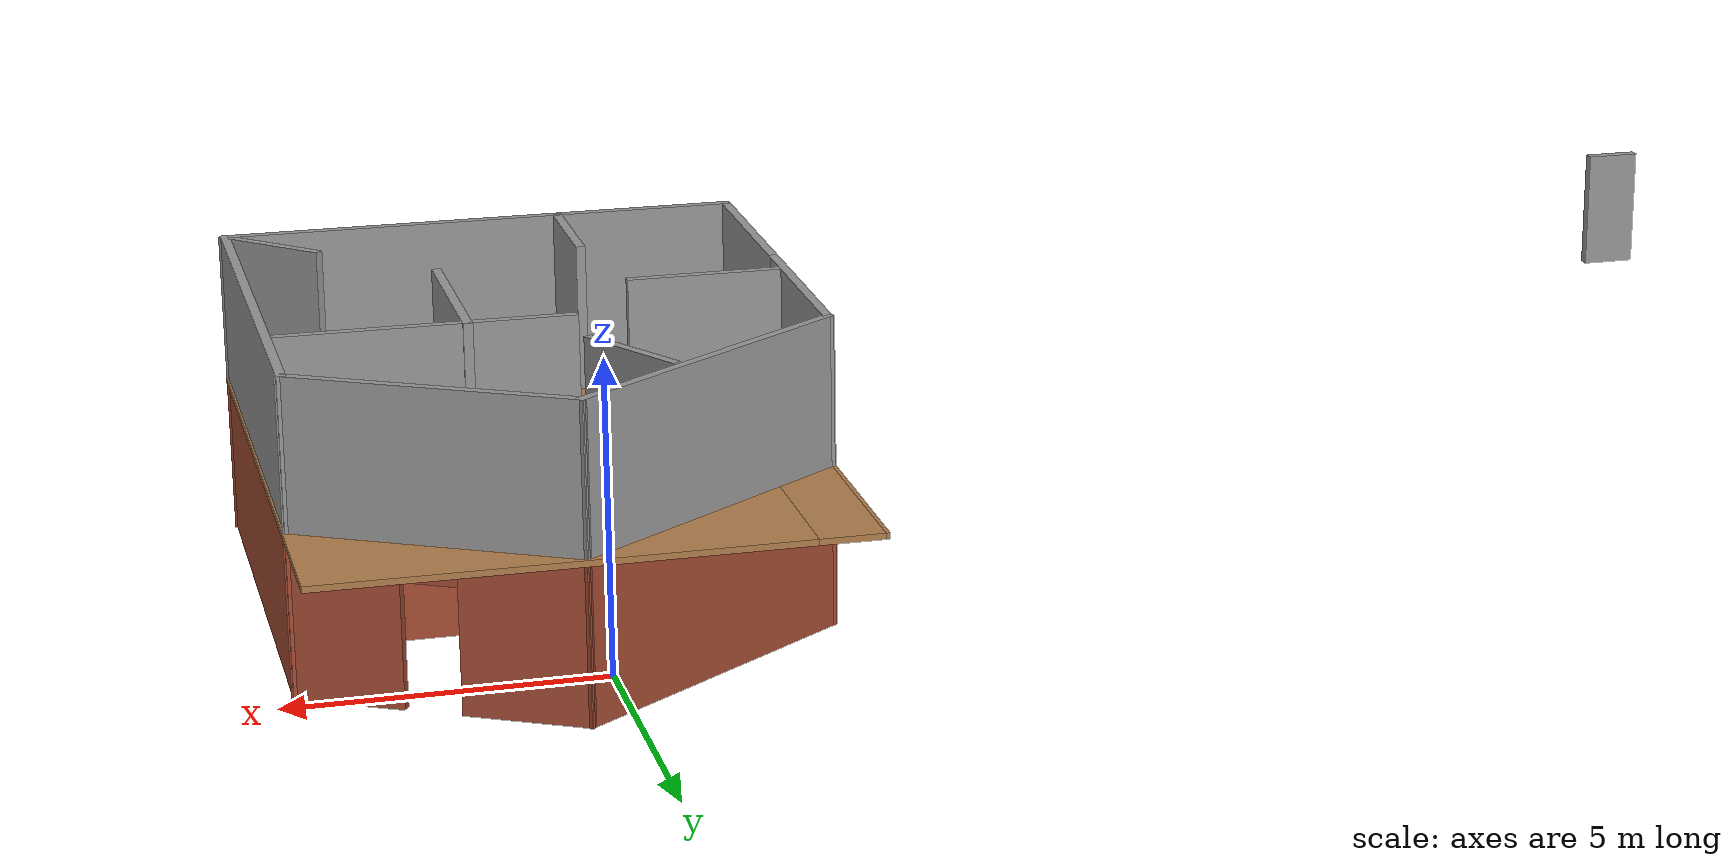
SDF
<?xml version='1.0'?>
<sdf version='1.7'>
  <model name='mapping'>
    <pose>0.485619 -3.31062 0 0 -0 0</pose>
    <link name='Door_2'>
      <collision name='Door_2_Collision'>
        <geometry>
          <box>
            <size>0.9 0.17 2</size>
          </box>
        </geometry>
        <pose>0 0 1 0 -0 0</pose>
      </collision>
      <visual name='Door_2_Visual'>
        <pose>0 0 1 0 -0 0</pose>
        <geometry>
          <box>
            <size>0.9 0.17 2</size>
          </box>
        </geometry>
        <material>
          <script>
            <uri>file://media/materials/scripts/gazebo.material</uri>
            <name>Gazebo/Grey</name>
          </script>
        </material>
      </visual>
      <pose>-20.8997 -6.18883 2.5 0 -0 0</pose>
    </link>
    <link name='Floor_0'>
      <pose>0 0 2.5 0 -0 0</pose>
      <visual name='Floor_0_Visual_0'>
        <pose>-4.24823 0 0.05 0 -0 0</pose>
        <geometry>
          <box>
            <size>0.06443 10.6109 0.1</size>
          </box>
        </geometry>
        <material>
          <script>
            <uri>file://media/materials/scripts/gazebo.material</uri>
            <name>Gazebo/Wood</name>
          </script>
          <ambient>1 1 1 1</ambient>
        </material>
        <meta>
          <layer>1</layer>
        </meta>
      </visual>
      <collision name='Floor_0_Collision_0'>
        <geometry>
          <box>
            <size>0.06443 10.6109 0.1</size>
          </box>
        </geometry>
        <pose>-4.24823 0 0.05 0 -0 0</pose>
      </collision>
      <visual name='Floor_0_Visual_1'>
        <pose>0.032215 -5.21233 0.05 0 -0 0</pose>
        <geometry>
          <box>
            <size>8.49646 0.186239 0.1</size>
          </box>
        </geometry>
        <material>
          <script>
            <uri>file://media/materials/scripts/gazebo.material</uri>
            <name>Gazebo/Wood</name>
          </script>
          <ambient>1 1 1 1</ambient>
        </material>
        <meta>
          <layer>1</layer>
        </meta>
      </visual>
      <collision name='Floor_0_Collision_1'>
        <geometry>
          <box>
            <size>8.49646 0.186239 0.1</size>
          </box>
        </geometry>
        <pose>0.032215 -5.21233 0.05 0 -0 0</pose>
      </collision>
      <visual name='Floor_0_Visual_2'>
        <pose>0.532215 0.093119 0.05 0 -0 0</pose>
        <geometry>
          <box>
            <size>7.49646 10.4247 0.1</size>
          </box>
        </geometry>
        <material>
          <script>
            <uri>file://media/materials/scripts/gazebo.material</uri>
            <name>Gazebo/Wood</name>
          </script>
          <ambient>1 1 1 1</ambient>
        </material>
        <meta>
          <layer>1</layer>
        </meta>
      </visual>
      <collision name='Floor_0_Collision_2'>
        <geometry>
          <box>
            <size>7.49646 10.4247 0.1</size>
          </box>
        </geometry>
        <pose>0.532215 0.093119 0.05 0 -0 0</pose>
      </collision>
      <visual name='Floor_0_Visual_3'>
        <pose>-3.71602 1.84312 0.05 0 -0 0</pose>
        <geometry>
          <box>
            <size>1 6.92465 0.1</size>
          </box>
        </geometry>
        <material>
          <script>
            <uri>file://media/materials/scripts/gazebo.material</uri>
            <name>Gazebo/Wood</name>
          </script>
          <ambient>1 1 1 1</ambient>
        </material>
        <meta>
          <layer>1</layer>
        </meta>
      </visual>
      <collision name='Floor_0_Collision_3'>
        <geometry>
          <box>
            <size>1 6.92465 0.1</size>
          </box>
        </geometry>
        <pose>-3.71602 1.84312 0.05 0 -0 0</pose>
      </collision>
    </link>
    <link name='Stairs_0'>
      <visual name='Stairs_0_Visual_0'>
        <pose>-3.71602 -1.73588 0.083333 0 -0 0</pose>
        <geometry>
          <box>
            <size>1 0.233333 0.166667</size>
          </box>
        </geometry>
        <material>
          <script>
            <uri>file://media/materials/scripts/gazebo.material</uri>
            <name>Gazebo/Grey</name>
          </script>
          <ambient>1 1 1 1</ambient>
        </material>
        <meta>
          <layer>0</layer>
        </meta>
      </visual>
      <collision name='Stairs_0_Collision_0'>
        <geometry>
          <box>
            <size>1 0.233333 0.166667</size>
          </box>
        </geometry>
        <pose>-3.71602 -1.73588 0.083333 0 -0 0</pose>
      </collision>
      <visual name='Stairs_0_Visual_1'>
        <pose>-3.71602 -1.96921 0.25 0 -0 0</pose>
        <geometry>
          <box>
            <size>1 0.233333 0.166667</size>
          </box>
        </geometry>
        <material>
          <script>
            <uri>file://media/materials/scripts/gazebo.material</uri>
            <name>Gazebo/Grey</name>
          </script>
          <ambient>1 1 1 1</ambient>
        </material>
        <meta>
          <layer>0</layer>
        </meta>
      </visual>
      <collision name='Stairs_0_Collision_1'>
        <geometry>
          <box>
            <size>1 0.233333 0.166667</size>
          </box>
        </geometry>
        <pose>-3.71602 -1.96921 0.25 0 -0 0</pose>
      </collision>
      <visual name='Stairs_0_Visual_2'>
        <pose>-3.71602 -2.20254 0.416667 0 -0 0</pose>
        <geometry>
          <box>
            <size>1 0.233333 0.166667</size>
          </box>
        </geometry>
        <material>
          <script>
            <uri>file://media/materials/scripts/gazebo.material</uri>
            <name>Gazebo/Grey</name>
          </script>
          <ambient>1 1 1 1</ambient>
        </material>
        <meta>
          <layer>0</layer>
        </meta>
      </visual>
      <collision name='Stairs_0_Collision_2'>
        <geometry>
          <box>
            <size>1 0.233333 0.166667</size>
          </box>
        </geometry>
        <pose>-3.71602 -2.20254 0.416667 0 -0 0</pose>
      </collision>
      <visual name='Stairs_0_Visual_3'>
        <pose>-3.71602 -2.43587 0.583333 0 -0 0</pose>
        <geometry>
          <box>
            <size>1 0.233333 0.166667</size>
          </box>
        </geometry>
        <material>
          <script>
            <uri>file://media/materials/scripts/gazebo.material</uri>
            <name>Gazebo/Grey</name>
          </script>
          <ambient>1 1 1 1</ambient>
        </material>
        <meta>
          <layer>0</layer>
        </meta>
      </visual>
      <collision name='Stairs_0_Collision_3'>
        <geometry>
          <box>
            <size>1 0.233333 0.166667</size>
          </box>
        </geometry>
        <pose>-3.71602 -2.43587 0.583333 0 -0 0</pose>
      </collision>
      <visual name='Stairs_0_Visual_4'>
        <pose>-3.71602 -2.66921 0.75 0 -0 0</pose>
        <geometry>
          <box>
            <size>1 0.233333 0.166667</size>
          </box>
        </geometry>
        <material>
          <script>
            <uri>file://media/materials/scripts/gazebo.material</uri>
            <name>Gazebo/Grey</name>
          </script>
          <ambient>1 1 1 1</ambient>
        </material>
        <meta>
          <layer>0</layer>
        </meta>
      </visual>
      <collision name='Stairs_0_Collision_4'>
        <geometry>
          <box>
            <size>1 0.233333 0.166667</size>
          </box>
        </geometry>
        <pose>-3.71602 -2.66921 0.75 0 -0 0</pose>
      </collision>
      <visual name='Stairs_0_Visual_5'>
        <pose>-3.71602 -2.90254 0.916667 0 -0 0</pose>
        <geometry>
          <box>
            <size>1 0.233333 0.166667</size>
          </box>
        </geometry>
        <material>
          <script>
            <uri>file://media/materials/scripts/gazebo.material</uri>
            <name>Gazebo/Grey</name>
          </script>
          <ambient>1 1 1 1</ambient>
        </material>
        <meta>
          <layer>0</layer>
        </meta>
      </visual>
      <collision name='Stairs_0_Collision_5'>
        <geometry>
          <box>
            <size>1 0.233333 0.166667</size>
          </box>
        </geometry>
        <pose>-3.71602 -2.90254 0.916667 0 -0 0</pose>
      </collision>
      <visual name='Stairs_0_Visual_6'>
        <pose>-3.71602 -3.13587 1.08333 0 -0 0</pose>
        <geometry>
          <box>
            <size>1 0.233333 0.166667</size>
          </box>
        </geometry>
        <material>
          <script>
            <uri>file://media/materials/scripts/gazebo.material</uri>
            <name>Gazebo/Grey</name>
          </script>
          <ambient>1 1 1 1</ambient>
        </material>
        <meta>
          <layer>0</layer>
        </meta>
      </visual>
      <collision name='Stairs_0_Collision_6'>
        <geometry>
          <box>
            <size>1 0.233333 0.166667</size>
          </box>
        </geometry>
        <pose>-3.71602 -3.13587 1.08333 0 -0 0</pose>
      </collision>
      <visual name='Stairs_0_Visual_7'>
        <pose>-3.71602 -3.36921 1.25 0 -0 0</pose>
        <geometry>
          <box>
            <size>1 0.233333 0.166667</size>
          </box>
        </geometry>
        <material>
          <script>
            <uri>file://media/materials/scripts/gazebo.material</uri>
            <name>Gazebo/Grey</name>
          </script>
          <ambient>1 1 1 1</ambient>
        </material>
        <meta>
          <layer>0</layer>
        </meta>
      </visual>
      <collision name='Stairs_0_Collision_7'>
        <geometry>
          <box>
            <size>1 0.233333 0.166667</size>
          </box>
        </geometry>
        <pose>-3.71602 -3.36921 1.25 0 -0 0</pose>
      </collision>
      <visual name='Stairs_0_Visual_8'>
        <pose>-3.71602 -3.60254 1.41667 0 -0 0</pose>
        <geometry>
          <box>
            <size>1 0.233333 0.166667</size>
          </box>
        </geometry>
        <material>
          <script>
            <uri>file://media/materials/scripts/gazebo.material</uri>
            <name>Gazebo/Grey</name>
          </script>
          <ambient>1 1 1 1</ambient>
        </material>
        <meta>
          <layer>0</layer>
        </meta>
      </visual>
      <collision name='Stairs_0_Collision_8'>
        <geometry>
          <box>
            <size>1 0.233333 0.166667</size>
          </box>
        </geometry>
        <pose>-3.71602 -3.60254 1.41667 0 -0 0</pose>
      </collision>
      <visual name='Stairs_0_Visual_9'>
        <pose>-3.71602 -3.83587 1.58333 0 -0 0</pose>
        <geometry>
          <box>
            <size>1 0.233333 0.166667</size>
          </box>
        </geometry>
        <material>
          <script>
            <uri>file://media/materials/scripts/gazebo.material</uri>
            <name>Gazebo/Grey</name>
          </script>
          <ambient>1 1 1 1</ambient>
        </material>
        <meta>
          <layer>0</layer>
        </meta>
      </visual>
      <collision name='Stairs_0_Collision_9'>
        <geometry>
          <box>
            <size>1 0.233333 0.166667</size>
          </box>
        </geometry>
        <pose>-3.71602 -3.83587 1.58333 0 -0 0</pose>
      </collision>
      <visual name='Stairs_0_Visual_10'>
        <pose>-3.71602 -4.06921 1.75 0 -0 0</pose>
        <geometry>
          <box>
            <size>1 0.233333 0.166667</size>
          </box>
        </geometry>
        <material>
          <script>
            <uri>file://media/materials/scripts/gazebo.material</uri>
            <name>Gazebo/Grey</name>
          </script>
          <ambient>1 1 1 1</ambient>
        </material>
        <meta>
          <layer>0</layer>
        </meta>
      </visual>
      <collision name='Stairs_0_Collision_10'>
        <geometry>
          <box>
            <size>1 0.233333 0.166667</size>
          </box>
        </geometry>
        <pose>-3.71602 -4.06921 1.75 0 -0 0</pose>
      </collision>
      <visual name='Stairs_0_Visual_11'>
        <pose>-3.71602 -4.30254 1.91667 0 -0 0</pose>
        <geometry>
          <box>
            <size>1 0.233333 0.166667</size>
          </box>
        </geometry>
        <material>
          <script>
            <uri>file://media/materials/scripts/gazebo.material</uri>
            <name>Gazebo/Grey</name>
          </script>
          <ambient>1 1 1 1</ambient>
        </material>
        <meta>
          <layer>0</layer>
        </meta>
      </visual>
      <collision name='Stairs_0_Collision_11'>
        <geometry>
          <box>
            <size>1 0.233333 0.166667</size>
          </box>
        </geometry>
        <pose>-3.71602 -4.30254 1.91667 0 -0 0</pose>
      </collision>
      <visual name='Stairs_0_Visual_12'>
        <pose>-3.71602 -4.53587 2.08333 0 -0 0</pose>
        <geometry>
          <box>
            <size>1 0.233333 0.166667</size>
          </box>
        </geometry>
        <material>
          <script>
            <uri>file://media/materials/scripts/gazebo.material</uri>
            <name>Gazebo/Grey</name>
          </script>
          <ambient>1 1 1 1</ambient>
        </material>
        <meta>
          <layer>0</layer>
        </meta>
      </visual>
      <collision name='Stairs_0_Collision_12'>
        <geometry>
          <box>
            <size>1 0.233333 0.166667</size>
          </box>
        </geometry>
        <pose>-3.71602 -4.53587 2.08333 0 -0 0</pose>
      </collision>
      <visual name='Stairs_0_Visual_13'>
        <pose>-3.71602 -4.76921 2.25 0 -0 0</pose>
        <geometry>
          <box>
            <size>1 0.233333 0.166667</size>
          </box>
        </geometry>
        <material>
          <script>
            <uri>file://media/materials/scripts/gazebo.material</uri>
            <name>Gazebo/Grey</name>
          </script>
          <ambient>1 1 1 1</ambient>
        </material>
        <meta>
          <layer>0</layer>
        </meta>
      </visual>
      <collision name='Stairs_0_Collision_13'>
        <geometry>
          <box>
            <size>1 0.233333 0.166667</size>
          </box>
        </geometry>
        <pose>-3.71602 -4.76921 2.25 0 -0 0</pose>
      </collision>
      <visual name='Stairs_0_Visual_14'>
        <pose>-3.71602 -5.00254 2.41667 0 -0 0</pose>
        <geometry>
          <box>
            <size>1 0.233333 0.166667</size>
          </box>
        </geometry>
        <material>
          <script>
            <uri>file://media/materials/scripts/gazebo.material</uri>
            <name>Gazebo/Grey</name>
          </script>
          <ambient>1 1 1 1</ambient>
        </material>
        <meta>
          <layer>0</layer>
        </meta>
      </visual>
      <collision name='Stairs_0_Collision_14'>
        <geometry>
          <box>
            <size>1 0.233333 0.166667</size>
          </box>
        </geometry>
        <pose>-3.71602 -5.00254 2.41667 0 -0 0</pose>
      </collision>
    </link>
    <link name='Wall_15'>
      <collision name='Wall_15_Collision'>
        <geometry>
          <box>
            <size>3.75 0.15 2.5</size>
          </box>
        </geometry>
        <pose>0 0 1.25 0 -0 0</pose>
      </collision>
      <visual name='Wall_15_Visual'>
        <pose>0 0 1.25 0 -0 0</pose>
        <geometry>
          <box>
            <size>3.75 0.15 2.5</size>
          </box>
        </geometry>
        <material>
          <script>
            <uri>file://media/materials/scripts/gazebo.material</uri>
            <name>Gazebo/Bricks</name>
          </script>
          <ambient>1 1 1 1</ambient>
        </material>
        <meta>
          <layer>0</layer>
        </meta>
      </visual>
      <pose>-4.17562 0.200619 0 0 -0 -1.5708</pose>
    </link>
    <link name='Wall_16'>
      <pose>-4.17562 -3.39938 0 0 -0 -1.5708</pose>
      <visual name='Wall_16_Visual_0'>
        <pose>-1.53829 0 1.25 0 -0 0</pose>
        <geometry>
          <box>
            <size>0.673421 0.15 2.5</size>
          </box>
        </geometry>
        <material>
          <script>
            <uri>file://media/materials/scripts/gazebo.material</uri>
            <name>Gazebo/Bricks</name>
          </script>
          <ambient>1 1 1 1</ambient>
        </material>
        <meta>
          <layer>0</layer>
        </meta>
      </visual>
      <collision name='Wall_16_Collision_0'>
        <geometry>
          <box>
            <size>0.673421 0.15 2.5</size>
          </box>
        </geometry>
        <pose>-1.53829 0 1.25 0 -0 0</pose>
      </collision>
      <visual name='Wall_16_Visual_1'>
        <pose>0.336711 0 0.25 0 -0 0</pose>
        <geometry>
          <box>
            <size>3.07658 0.15 0.5</size>
          </box>
        </geometry>
        <material>
          <script>
            <uri>file://media/materials/scripts/gazebo.material</uri>
            <name>Gazebo/Bricks</name>
          </script>
          <ambient>1 1 1 1</ambient>
        </material>
        <meta>
          <layer>0</layer>
        </meta>
      </visual>
      <collision name='Wall_16_Collision_1'>
        <geometry>
          <box>
            <size>3.07658 0.15 0.5</size>
          </box>
        </geometry>
        <pose>0.336711 0 0.25 0 -0 0</pose>
      </collision>
      <visual name='Wall_16_Visual_2'>
        <pose>0.736711 0 1.5 0 -0 0</pose>
        <geometry>
          <box>
            <size>2.27658 0.15 2</size>
          </box>
        </geometry>
        <material>
          <script>
            <uri>file://media/materials/scripts/gazebo.material</uri>
            <name>Gazebo/Bricks</name>
          </script>
          <ambient>1 1 1 1</ambient>
        </material>
        <meta>
          <layer>0</layer>
        </meta>
      </visual>
      <collision name='Wall_16_Collision_2'>
        <geometry>
          <box>
            <size>2.27658 0.15 2</size>
          </box>
        </geometry>
        <pose>0.736711 0 1.5 0 -0 0</pose>
      </collision>
      <visual name='Wall_16_Visual_3'>
        <pose>-0.801579 0 1.9 0 -0 0</pose>
        <geometry>
          <box>
            <size>0.8 0.15 1.2</size>
          </box>
        </geometry>
        <material>
          <script>
            <uri>file://media/materials/scripts/gazebo.material</uri>
            <name>Gazebo/Bricks</name>
          </script>
          <ambient>1 1 1 1</ambient>
        </material>
        <meta>
          <layer>0</layer>
        </meta>
      </visual>
      <collision name='Wall_16_Collision_3'>
        <geometry>
          <box>
            <size>0.8 0.15 1.2</size>
          </box>
        </geometry>
        <pose>-0.801579 0 1.9 0 -0 0</pose>
      </collision>
    </link>
    <link name='Wall_17'>
      <collision name='Wall_17_Collision'>
        <geometry>
          <box>
            <size>8.5 0.15 2.5</size>
          </box>
        </geometry>
        <pose>0 0 1.25 0 -0 0</pose>
      </collision>
      <visual name='Wall_17_Visual'>
        <pose>0 0 1.25 0 -0 0</pose>
        <geometry>
          <box>
            <size>8.5 0.15 2.5</size>
          </box>
        </geometry>
        <material>
          <script>
            <uri>file://media/materials/scripts/gazebo.material</uri>
            <name>Gazebo/Bricks</name>
          </script>
          <ambient>1 1 1 1</ambient>
        </material>
        <meta>
          <layer>0</layer>
        </meta>
      </visual>
      <pose>-0.000619 -5.19938 0 0 -0 0</pose>
    </link>
    <link name='Wall_18'>
      <collision name='Wall_18_Collision'>
        <geometry>
          <box>
            <size>8.25 0.15 2.5</size>
          </box>
        </geometry>
        <pose>0 0 1.25 0 -0 0</pose>
      </collision>
      <visual name='Wall_18_Visual'>
        <pose>0 0 1.25 0 -0 0</pose>
        <geometry>
          <box>
            <size>8.25 0.15 2.5</size>
          </box>
        </geometry>
        <material>
          <script>
            <uri>file://media/materials/scripts/gazebo.material</uri>
            <name>Gazebo/Bricks</name>
          </script>
          <ambient>1 1 1 1</ambient>
        </material>
        <meta>
          <layer>0</layer>
        </meta>
      </visual>
      <pose>4.17438 -1.14938 0 0 -0 1.5708</pose>
    </link>
    <link name='Wall_19'>
      <pose>2.18252 4.05062 0 0 -0 2.61799</pose>
      <visual name='Wall_19_Visual_0'>
        <pose>-1.47615 0 1.25 0 -0 0</pose>
        <geometry>
          <box>
            <size>1.7977 0.15 2.5</size>
          </box>
        </geometry>
        <material>
          <script>
            <uri>file://media/materials/scripts/gazebo.material</uri>
            <name>Gazebo/Bricks</name>
          </script>
          <ambient>1 1 1 1</ambient>
        </material>
        <meta>
          <layer>0</layer>
        </meta>
      </visual>
      <collision name='Wall_19_Collision_0'>
        <geometry>
          <box>
            <size>1.7977 0.15 2.5</size>
          </box>
        </geometry>
        <pose>-1.47615 0 1.25 0 -0 0</pose>
      </collision>
      <visual name='Wall_19_Visual_1'>
        <pose>1.34885 0 1.25 0 -0 0</pose>
        <geometry>
          <box>
            <size>2.0523 0.15 2.5</size>
          </box>
        </geometry>
        <material>
          <script>
            <uri>file://media/materials/scripts/gazebo.material</uri>
            <name>Gazebo/Bricks</name>
          </script>
          <ambient>1 1 1 1</ambient>
        </material>
        <meta>
          <layer>0</layer>
        </meta>
      </visual>
      <collision name='Wall_19_Collision_1'>
        <geometry>
          <box>
            <size>2.0523 0.15 2.5</size>
          </box>
        </geometry>
        <pose>1.34885 0 1.25 0 -0 0</pose>
      </collision>
      <visual name='Wall_19_Visual_2'>
        <pose>-0.127302 0 2.25 0 -0 0</pose>
        <geometry>
          <box>
            <size>0.9 0.15 0.5</size>
          </box>
        </geometry>
        <material>
          <script>
            <uri>file://media/materials/scripts/gazebo.material</uri>
            <name>Gazebo/Bricks</name>
          </script>
          <ambient>1 1 1 1</ambient>
        </material>
        <meta>
          <layer>0</layer>
        </meta>
      </visual>
      <collision name='Wall_19_Collision_2'>
        <geometry>
          <box>
            <size>0.9 0.15 0.5</size>
          </box>
        </geometry>
        <pose>-0.127302 0 2.25 0 -0 0</pose>
      </collision>
    </link>
    <link name='Wall_20'>
      <collision name='Wall_20_Collision'>
        <geometry>
          <box>
            <size>5.56336 0.15 2.5</size>
          </box>
        </geometry>
        <pose>0 0 1.25 0 -0 0</pose>
      </collision>
      <visual name='Wall_20_Visual'>
        <pose>0 0 1.25 0 -0 0</pose>
        <geometry>
          <box>
            <size>5.56336 0.15 2.5</size>
          </box>
        </geometry>
        <material>
          <script>
            <uri>file://media/materials/scripts/gazebo.material</uri>
            <name>Gazebo/Bricks</name>
          </script>
          <ambient>1 1 1 1</ambient>
        </material>
        <meta>
          <layer>0</layer>
        </meta>
      </visual>
      <pose>-1.99248 3.60062 0 0 -0 -2.50913</pose>
    </link>
    <link name='Wall_22'>
      <collision name='Wall_22_Collision'>
        <geometry>
          <box>
            <size>4.75 0.15 2.5</size>
          </box>
        </geometry>
        <pose>0 0 1.25 0 -0 0</pose>
      </collision>
      <visual name='Wall_22_Visual'>
        <pose>0 0 1.25 0 -0 0</pose>
        <geometry>
          <box>
            <size>4.75 0.15 2.5</size>
          </box>
        </geometry>
        <material>
          <script>
            <uri>file://media/materials/scripts/gazebo.material</uri>
            <name>Gazebo/Bricks</name>
          </script>
          <ambient>1 1 1 1</ambient>
        </material>
        <meta>
          <layer>0</layer>
        </meta>
      </visual>
      <pose>1.83104 0.860224 0 0 -0 3.14159</pose>
    </link>
    <link name='Wall_24'>
      <collision name='Wall_24_Collision'>
        <geometry>
          <box>
            <size>3.25 0.15 2.5</size>
          </box>
        </geometry>
        <pose>0 0 1.25 0 -0 0</pose>
      </collision>
      <visual name='Wall_24_Visual'>
        <pose>0 0 1.25 0 -0 0</pose>
        <geometry>
          <box>
            <size>3.25 0.15 2.5</size>
          </box>
        </geometry>
        <material>
          <script>
            <uri>file://media/materials/scripts/gazebo.material</uri>
            <name>Gazebo/Bricks</name>
          </script>
          <ambient>1 1 1 1</ambient>
        </material>
        <meta>
          <layer>0</layer>
        </meta>
      </visual>
      <pose>1.15182 -0.663176 0 0 -0 -1.5708</pose>
    </link>
    <link name='Wall_26'>
      <collision name='Wall_26_Collision'>
        <geometry>
          <box>
            <size>2.5 0.15 2.5</size>
          </box>
        </geometry>
        <pose>0 0 1.25 0 -0 0</pose>
      </collision>
      <visual name='Wall_26_Visual'>
        <pose>0 0 1.25 0 -0 0</pose>
        <geometry>
          <box>
            <size>2.5 0.15 2.5</size>
          </box>
        </geometry>
        <material>
          <script>
            <uri>file://media/materials/scripts/gazebo.material</uri>
            <name>Gazebo/Bricks</name>
          </script>
          <ambient>1 1 1 1</ambient>
        </material>
        <meta>
          <layer>0</layer>
        </meta>
      </visual>
      <pose>-2.88682 -0.868789 0 0 -0 0</pose>
    </link>
    <link name='Wall_28'>
      <collision name='Wall_28_Collision'>
        <geometry>
          <box>
            <size>2.25 0.15 2.5</size>
          </box>
        </geometry>
        <pose>0 0 1.25 0 -0 0</pose>
      </collision>
      <visual name='Wall_28_Visual'>
        <pose>0 0 1.25 0 -0 0</pose>
        <geometry>
          <box>
            <size>2.25 0.15 2.5</size>
          </box>
        </geometry>
        <material>
          <script>
            <uri>file://media/materials/scripts/gazebo.material</uri>
            <name>Gazebo/Bricks</name>
          </script>
          <ambient>1 1 1 1</ambient>
        </material>
        <meta>
          <layer>0</layer>
        </meta>
      </visual>
      <pose>-1.2954 -4.12802 0 0 -0 1.5708</pose>
    </link>
    <link name='Wall_30'>
      <collision name='Wall_30_Collision'>
        <geometry>
          <box>
            <size>2 0.15 2.5</size>
          </box>
        </geometry>
        <pose>0 0 1.25 0 -0 0</pose>
      </collision>
      <visual name='Wall_30_Visual'>
        <pose>0 0 1.25 0 -0 0</pose>
        <geometry>
          <box>
            <size>2 0.15 2.5</size>
          </box>
        </geometry>
        <material>
          <script>
            <uri>file://media/materials/scripts/gazebo.material</uri>
            <name>Gazebo/Bricks</name>
          </script>
          <ambient>1 1 1 1</ambient>
        </material>
        <meta>
          <layer>0</layer>
        </meta>
      </visual>
      <pose>3.52031 -4.54531 0 0 -0 2.35619</pose>
    </link>
    <link name='Wall_32'>
      <collision name='Wall_32_Collision'>
        <geometry>
          <box>
            <size>2 0.15 2.5</size>
          </box>
        </geometry>
        <pose>0 0 1.25 0 -0 0</pose>
      </collision>
      <visual name='Wall_32_Visual'>
        <pose>0 0 1.25 0 -0 0</pose>
        <geometry>
          <box>
            <size>2 0.15 2.5</size>
          </box>
        </geometry>
        <material>
          <script>
            <uri>file://media/materials/scripts/gazebo.material</uri>
            <name>Gazebo/Bricks</name>
          </script>
          <ambient>1 1 1 1</ambient>
        </material>
        <meta>
          <layer>0</layer>
        </meta>
      </visual>
      <pose>-0.965899 2.95857 0 0 -0 -1.0472</pose>
    </link>
    <link name='Wall_34'>
      <collision name='Wall_34_Collision'>
        <geometry>
          <box>
            <size>3.75 0.15 2.5</size>
          </box>
        </geometry>
        <pose>0 0 1.25 0 -0 0</pose>
      </collision>
      <visual name='Wall_34_Visual'>
        <pose>0 0 1.25 0 -0 0</pose>
        <geometry>
          <box>
            <size>3.75 0.15 2.5</size>
          </box>
        </geometry>
        <material>
          <script>
            <uri>file://media/materials/scripts/gazebo.material</uri>
            <name>Gazebo/Grey</name>
          </script>
          <ambient>1 1 1 1</ambient>
        </material>
        <meta>
          <layer>1</layer>
        </meta>
      </visual>
      <pose>-4.17562 0.200619 2.5 0 -0 -1.5708</pose>
    </link>
    <link name='Wall_35'>
      <collision name='Wall_35_Collision'>
        <geometry>
          <box>
            <size>3.75 0.15 2.5</size>
          </box>
        </geometry>
        <pose>0 0 1.25 0 -0 0</pose>
      </collision>
      <visual name='Wall_35_Visual'>
        <pose>0 0 1.25 0 -0 0</pose>
        <geometry>
          <box>
            <size>3.75 0.15 2.5</size>
          </box>
        </geometry>
        <material>
          <script>
            <uri>file://media/materials/scripts/gazebo.material</uri>
            <name>Gazebo/Grey</name>
          </script>
          <ambient>1 1 1 1</ambient>
        </material>
        <meta>
          <layer>1</layer>
        </meta>
      </visual>
      <pose>-4.17562 -3.39938 2.5 0 -0 -1.5708</pose>
    </link>
    <link name='Wall_36'>
      <collision name='Wall_36_Collision'>
        <geometry>
          <box>
            <size>8.5 0.15 2.5</size>
          </box>
        </geometry>
        <pose>0 0 1.25 0 -0 0</pose>
      </collision>
      <visual name='Wall_36_Visual'>
        <pose>0 0 1.25 0 -0 0</pose>
        <geometry>
          <box>
            <size>8.5 0.15 2.5</size>
          </box>
        </geometry>
        <material>
          <script>
            <uri>file://media/materials/scripts/gazebo.material</uri>
            <name>Gazebo/Grey</name>
          </script>
          <ambient>1 1 1 1</ambient>
        </material>
        <meta>
          <layer>1</layer>
        </meta>
      </visual>
      <pose>-0.000619 -5.19938 2.5 0 -0 0</pose>
    </link>
    <link name='Wall_37'>
      <collision name='Wall_37_Collision'>
        <geometry>
          <box>
            <size>8.25 0.15 2.5</size>
          </box>
        </geometry>
        <pose>0 0 1.25 0 -0 0</pose>
      </collision>
      <visual name='Wall_37_Visual'>
        <pose>0 0 1.25 0 -0 0</pose>
        <geometry>
          <box>
            <size>8.25 0.15 2.5</size>
          </box>
        </geometry>
        <material>
          <script>
            <uri>file://media/materials/scripts/gazebo.material</uri>
            <name>Gazebo/Grey</name>
          </script>
          <ambient>1 1 1 1</ambient>
        </material>
        <meta>
          <layer>1</layer>
        </meta>
      </visual>
      <pose>4.17438 -1.14938 2.5 0 -0 1.5708</pose>
    </link>
    <link name='Wall_38'>
      <collision name='Wall_38_Collision'>
        <geometry>
          <box>
            <size>4.75 0.15 2.5</size>
          </box>
        </geometry>
        <pose>0 0 1.25 0 -0 0</pose>
      </collision>
      <visual name='Wall_38_Visual'>
        <pose>0 0 1.25 0 -0 0</pose>
        <geometry>
          <box>
            <size>4.75 0.15 2.5</size>
          </box>
        </geometry>
        <material>
          <script>
            <uri>file://media/materials/scripts/gazebo.material</uri>
            <name>Gazebo/Grey</name>
          </script>
          <ambient>1 1 1 1</ambient>
        </material>
        <meta>
          <layer>1</layer>
        </meta>
      </visual>
      <pose>2.18252 4.05062 2.5 0 -0 2.61799</pose>
    </link>
    <link name='Wall_39'>
      <collision name='Wall_39_Collision'>
        <geometry>
          <box>
            <size>5.56336 0.15 2.5</size>
          </box>
        </geometry>
        <pose>0 0 1.25 0 -0 0</pose>
      </collision>
      <visual name='Wall_39_Visual'>
        <pose>0 0 1.25 0 -0 0</pose>
        <geometry>
          <box>
            <size>5.56336 0.15 2.5</size>
          </box>
        </geometry>
        <material>
          <script>
            <uri>file://media/materials/scripts/gazebo.material</uri>
            <name>Gazebo/Grey</name>
          </script>
          <ambient>1 1 1 1</ambient>
        </material>
        <meta>
          <layer>1</layer>
        </meta>
      </visual>
      <pose>-1.99248 3.60062 2.5 0 -0 -2.50913</pose>
    </link>
    <link name='Wall_40'>
      <collision name='Wall_40_Collision'>
        <geometry>
          <box>
            <size>4.75 0.15 2.5</size>
          </box>
        </geometry>
        <pose>0 0 1.25 0 -0 0</pose>
      </collision>
      <visual name='Wall_40_Visual'>
        <pose>0 0 1.25 0 -0 0</pose>
        <geometry>
          <box>
            <size>4.75 0.15 2.5</size>
          </box>
        </geometry>
        <material>
          <script>
            <uri>file://media/materials/scripts/gazebo.material</uri>
            <name>Gazebo/Grey</name>
          </script>
          <ambient>1 1 1 1</ambient>
        </material>
        <meta>
          <layer>1</layer>
        </meta>
      </visual>
      <pose>1.83104 0.860224 2.5 0 -0 3.14159</pose>
    </link>
    <link name='Wall_41'>
      <collision name='Wall_41_Collision'>
        <geometry>
          <box>
            <size>3.25 0.15 2.5</size>
          </box>
        </geometry>
        <pose>0 0 1.25 0 -0 0</pose>
      </collision>
      <visual name='Wall_41_Visual'>
        <pose>0 0 1.25 0 -0 0</pose>
        <geometry>
          <box>
            <size>3.25 0.15 2.5</size>
          </box>
        </geometry>
        <material>
          <script>
            <uri>file://media/materials/scripts/gazebo.material</uri>
            <name>Gazebo/Grey</name>
          </script>
          <ambient>1 1 1 1</ambient>
        </material>
        <meta>
          <layer>1</layer>
        </meta>
      </visual>
      <pose>1.15182 -0.663176 2.5 0 -0 -1.5708</pose>
    </link>
    <link name='Wall_42'>
      <collision name='Wall_42_Collision'>
        <geometry>
          <box>
            <size>2.5 0.15 2.5</size>
          </box>
        </geometry>
        <pose>0 0 1.25 0 -0 0</pose>
      </collision>
      <visual name='Wall_42_Visual'>
        <pose>0 0 1.25 0 -0 0</pose>
        <geometry>
          <box>
            <size>2.5 0.15 2.5</size>
          </box>
        </geometry>
        <material>
          <script>
            <uri>file://media/materials/scripts/gazebo.material</uri>
            <name>Gazebo/Grey</name>
          </script>
          <ambient>1 1 1 1</ambient>
        </material>
        <meta>
          <layer>1</layer>
        </meta>
      </visual>
      <pose>-2.88682 -0.868789 2.5 0 -0 0</pose>
    </link>
    <link name='Wall_43'>
      <collision name='Wall_43_Collision'>
        <geometry>
          <box>
            <size>2.25 0.15 2.5</size>
          </box>
        </geometry>
        <pose>0 0 1.25 0 -0 0</pose>
      </collision>
      <visual name='Wall_43_Visual'>
        <pose>0 0 1.25 0 -0 0</pose>
        <geometry>
          <box>
            <size>2.25 0.15 2.5</size>
          </box>
        </geometry>
        <material>
          <script>
            <uri>file://media/materials/scripts/gazebo.material</uri>
            <name>Gazebo/Grey</name>
          </script>
          <ambient>1 1 1 1</ambient>
        </material>
        <meta>
          <layer>1</layer>
        </meta>
      </visual>
      <pose>-1.2954 -4.12802 2.5 0 -0 1.5708</pose>
    </link>
    <link name='Wall_44'>
      <collision name='Wall_44_Collision'>
        <geometry>
          <box>
            <size>2 0.15 2.5</size>
          </box>
        </geometry>
        <pose>0 0 1.25 0 -0 0</pose>
      </collision>
      <visual name='Wall_44_Visual'>
        <pose>0 0 1.25 0 -0 0</pose>
        <geometry>
          <box>
            <size>2 0.15 2.5</size>
          </box>
        </geometry>
        <material>
          <script>
            <uri>file://media/materials/scripts/gazebo.material</uri>
            <name>Gazebo/Grey</name>
          </script>
          <ambient>1 1 1 1</ambient>
        </material>
        <meta>
          <layer>1</layer>
        </meta>
      </visual>
      <pose>3.52031 -4.54531 2.5 0 -0 2.35619</pose>
    </link>
    <link name='Wall_45'>
      <collision name='Wall_45_Collision'>
        <geometry>
          <box>
            <size>2 0.15 2.5</size>
          </box>
        </geometry>
        <pose>0 0 1.25 0 -0 0</pose>
      </collision>
      <visual name='Wall_45_Visual'>
        <pose>0 0 1.25 0 -0 0</pose>
        <geometry>
          <box>
            <size>2 0.15 2.5</size>
          </box>
        </geometry>
        <material>
          <script>
            <uri>file://media/materials/scripts/gazebo.material</uri>
            <name>Gazebo/Grey</name>
          </script>
          <ambient>1 1 1 1</ambient>
        </material>
        <meta>
          <layer>1</layer>
        </meta>
      </visual>
      <pose>-0.965899 2.95857 2.5 0 -0 -1.0472</pose>
    </link>
    <static>1</static>
  </model>
</sdf>
